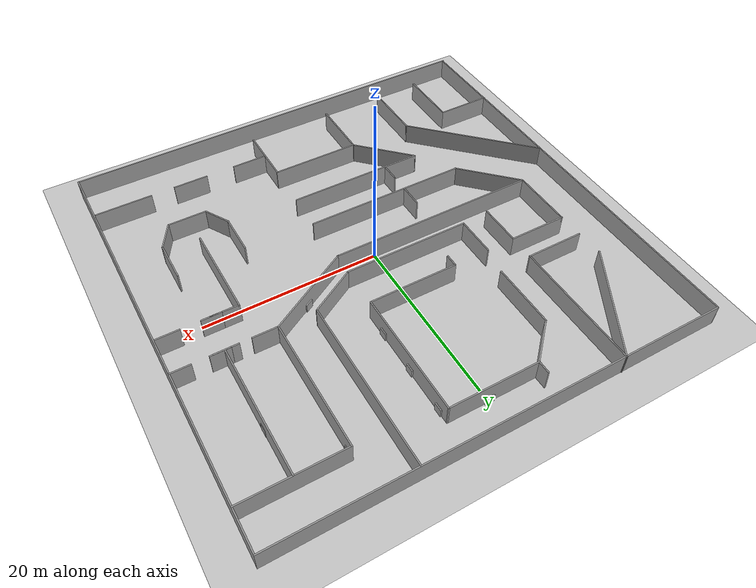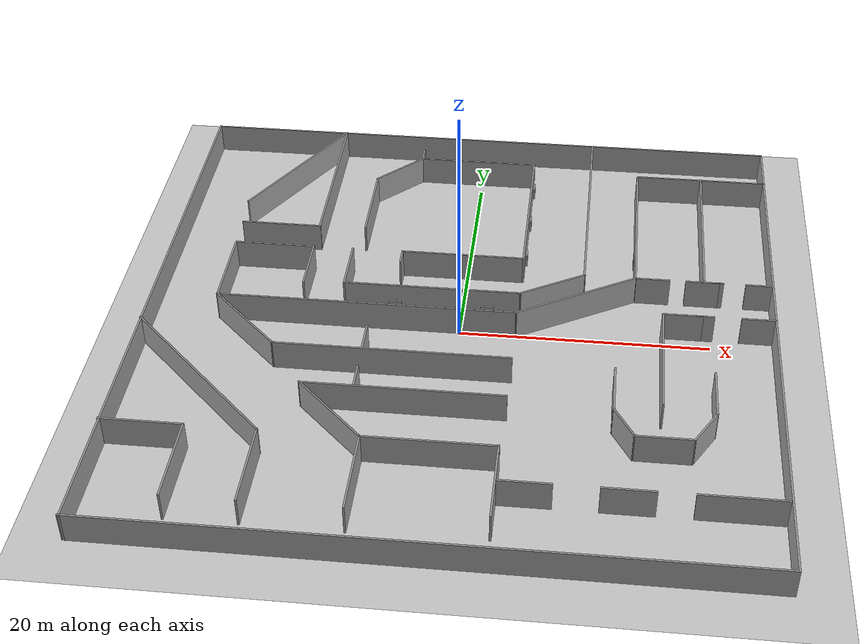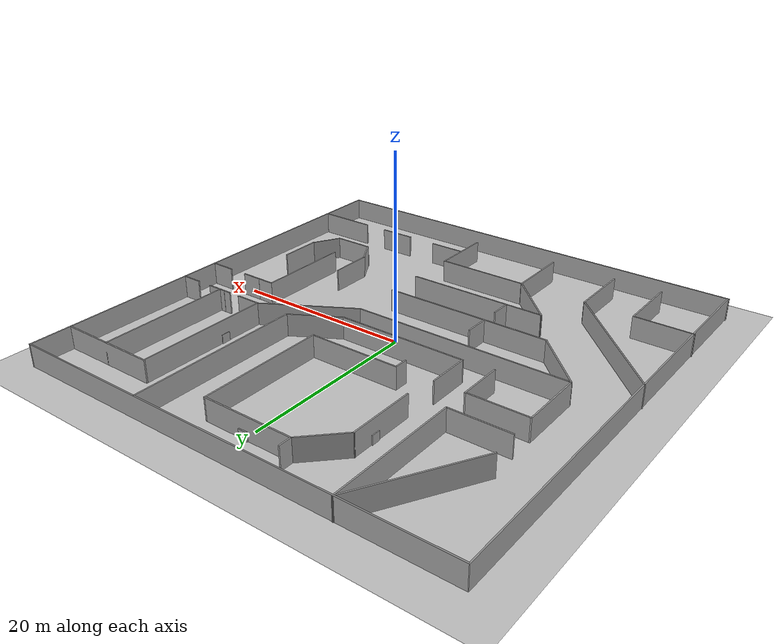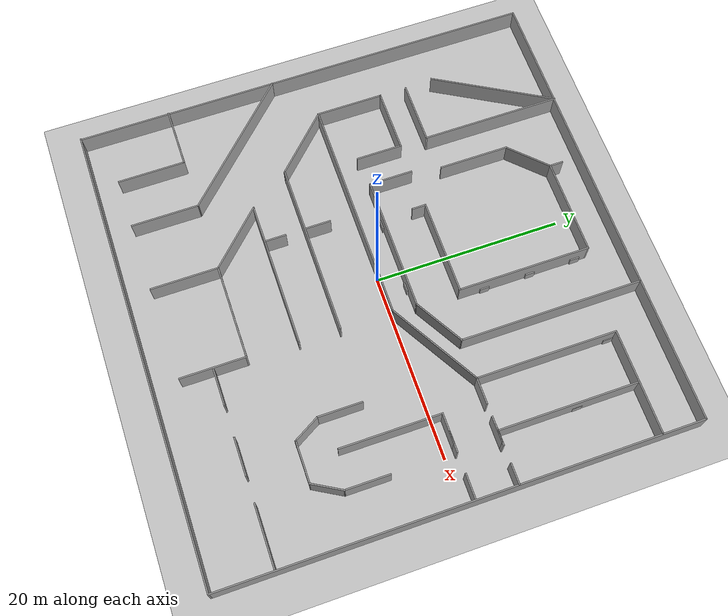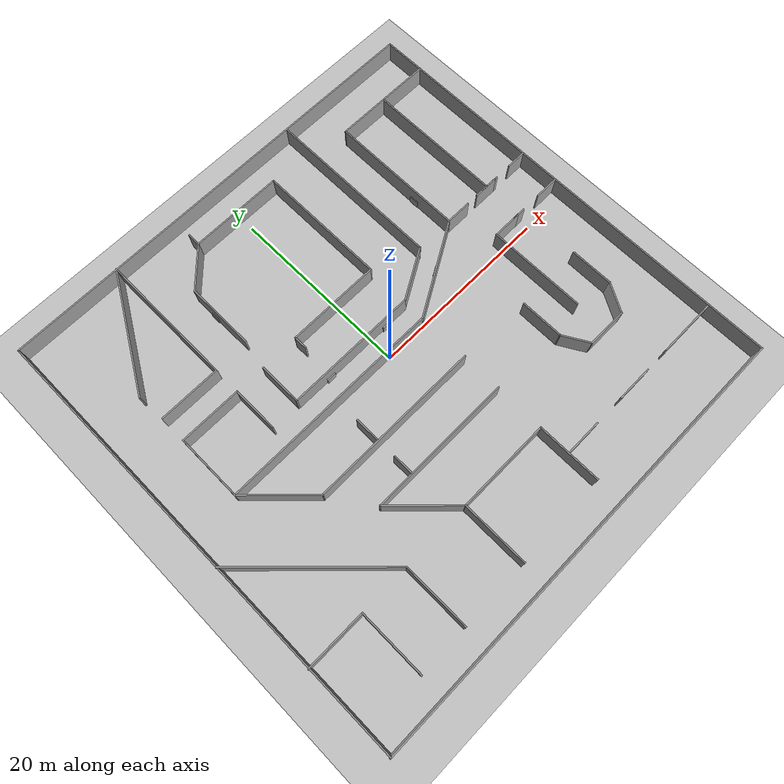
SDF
<?xml version="1.0" ?>

<sdf version="1.6">
	<world name="default">
		<!-- Uncomment this for tracking the robot -->
		<!-- Comment this for manually changing the camera-->
		<include>
			<uri>model://sun</uri>
		</include>
		<include>
			<uri>model://ground_plane</uri>
		</include>
        <include>
            <uri>model://house_3_3</uri>
            <pose>0 0 0 0 0 0</pose>
        </include>

        <include>
			<uri>model://house_3_help</uri>
			<pose>-7 -6.25 0 0 0 0</pose>
		</include>

        <include>
			<uri>model://house_3_help</uri>
			<pose>21.5 5.47 0 0 0 1.5708</pose>
		</include>

        <include>
			<uri>model://house_3_help</uri>
			<pose>17.5 5.47 0 0 0 1.5708</pose>
		</include>

        <include>
			<uri>model://house_3_help</uri>
			<pose>21.5 1.065 0 0 0 -1.5708</pose>
		</include>

        <include>
			<uri>model://willow_door_3</uri>
			<pose>13.84 10.24 0.5 0 0 1.5708</pose>
		</include>
        <include>
			<uri>model://willow_door_3</uri>
			<pose>-5.5 2.4 0.5 0 0 0</pose>
		</include>

        <include>
			<uri>model://willow_door_3</uri>
			<pose>2 2.4 0.5 0 0 0</pose>
		</include>

        <include>
			<uri>model://willow_door_3</uri>
			<pose>9.5 3.1 0.5 0 0 0.52</pose>
		</include>

        <include>
			<uri>model://willow_door_3</uri>
			<pose>0 21.46 0.5 0 0 0</pose>
		</include>

        <include>
			<uri>model://willow_door_3</uri>
			<pose>-9.2 15 0.5 0 0 1.5708</pose>
		</include>

        <include>
			<uri>model://willow_door_3</uri>
			<pose>4.75 10 0.5 0 0 1.5708</pose>
		</include>

        <include>
			<uri>model://willow_door_3</uri>
			<pose>4.75 20 0.5 0 0 1.5708</pose>
		</include>

        <include>
			<uri>model://willow_door_3</uri>
			<pose>4.75 15 0.5 0 0 1.5708</pose>
		</include>

        <include>
			<uri>model://house_3_help_2</uri>
			<pose>-5.5 22 0 0 0 -1.5708</pose>
		</include>

        <include>
			<uri>model://house_3_help_2</uri>
			<pose>-5.5 6.5 0 0 0 -1.5708</pose>
		</include>

        <include>
			<uri>model://willow_door_3</uri>
			<pose>14 19.7 0.5 0 0 1.5708</pose>
		</include>

        <include>
			<uri>model://willow_door_3</uri>
			<pose>19.5 14 0.5 0 0 1.5708</pose>
		</include>
	</world>
</sdf>

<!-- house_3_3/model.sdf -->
<sdf version='1.6'>
  <model name='house_3'>
    <pose frame=''>-12.8065 -13.7879 0 0 -0 0</pose>
    <link name='Wall_0'>
      <collision name='Wall_0_Collision'>
        <geometry>
          <box>
            <size>50 0.15 2.5</size>
          </box>
        </geometry>
        <pose frame=''>0 0 1.25 0 -0 0</pose>
      </collision>
      <visual name='Wall_0_Visual'>
        <pose frame=''>0 0 1.25 0 -0 0</pose>
        <geometry>
          <box>
            <size>50 0.15 2.5</size>
          </box>
        </geometry>
        <material>
          <script>
            <uri>file://media/materials/scripts/gazebo.material</uri>
            <name>Gazebo/Grey</name>
          </script>
          <ambient>1 1 1 1</ambient>
        </material>
        <meta>
          <layer>0</layer>
        </meta>
      </visual>
      <pose frame=''>0.082539 24.8829 0 0 -0 0</pose>
    </link>
    <link name='Wall_10'>
      <collision name='Wall_10_Collision'>
        <geometry>
          <box>
            <size>15 0.15 2.5</size>
          </box>
        </geometry>
        <pose frame=''>0 0 1.25 0 -0 0</pose>
      </collision>
      <visual name='Wall_10_Visual'>
        <pose frame=''>0 0 1.25 0 -0 0</pose>
        <geometry>
          <box>
            <size>15 0.15 2.5</size>
          </box>
        </geometry>
        <material>
          <script>
            <uri>file://media/materials/scripts/gazebo.material</uri>
            <name>Gazebo/Grey</name>
          </script>
          <ambient>1 1 1 1</ambient>
        </material>
        <meta>
          <layer>0</layer>
        </meta>
      </visual>
      <pose frame=''>13.9015 12.9025 0 0 -0 -1.5708</pose>
    </link>
    <link name='Wall_12'>
      <collision name='Wall_12_Collision'>
        <geometry>
          <box>
            <size>15 0.15 2.5</size>
          </box>
        </geometry>
        <pose frame=''>0 0 1.25 0 -0 0</pose>
      </collision>
      <visual name='Wall_12_Visual'>
        <pose frame=''>0 0 1.25 0 -0 0</pose>
        <geometry>
          <box>
            <size>15 0.15 2.5</size>
          </box>
        </geometry>
        <material>
          <script>
            <uri>file://media/materials/scripts/gazebo.material</uri>
            <name>Gazebo/Grey</name>
          </script>
          <ambient>1 1 1 1</ambient>
        </material>
        <meta>
          <layer>0</layer>
        </meta>
      </visual>
      <pose frame=''>19.4669 12.9025 0 0 -0 -1.5708</pose>
    </link>
    <link name='Wall_14'>
      <collision name='Wall_14_Collision'>
        <geometry>
          <box>
            <size>11 0.15 2.5</size>
          </box>
        </geometry>
        <pose frame=''>0 0 1.25 0 -0 0</pose>
      </collision>
      <visual name='Wall_14_Visual'>
        <pose frame=''>0 0 1.25 0 -0 0</pose>
        <geometry>
          <box>
            <size>11 0.15 2.5</size>
          </box>
        </geometry>
        <material>
          <script>
            <uri>file://media/materials/scripts/gazebo.material</uri>
            <name>Gazebo/Grey</name>
          </script>
          <ambient>1 1 1 1</ambient>
        </material>
        <meta>
          <layer>0</layer>
        </meta>
      </visual>
      <pose frame=''>9.2033 2.76496 0 0 -0 -2.61799</pose>
    </link>
    <link name='Wall_15'>
      <collision name='Wall_15_Collision'>
        <geometry>
          <box>
            <size>24.25 0.15 2.5</size>
          </box>
        </geometry>
        <pose frame=''>0 0 1.25 0 -0 0</pose>
      </collision>
      <visual name='Wall_15_Visual'>
        <pose frame=''>0 0 1.25 0 -0 0</pose>
        <geometry>
          <box>
            <size>24.25 0.15 2.5</size>
          </box>
        </geometry>
        <material>
          <script>
            <uri>file://media/materials/scripts/gazebo.material</uri>
            <name>Gazebo/Grey</name>
          </script>
          <ambient>1 1 1 1</ambient>
        </material>
        <meta>
          <layer>0</layer>
        </meta>
      </visual>
      <pose frame=''>-7.54488 0.052464 0 0 -0 3.14159</pose>
    </link>
    <link name='Wall_16'>
      <collision name='Wall_16_Collision'>
        <geometry>
          <box>
            <size>7.25 0.15 2.5</size>
          </box>
        </geometry>
        <pose frame=''>0 0 1.25 0 -0 0</pose>
      </collision>
      <visual name='Wall_16_Visual'>
        <pose frame=''>0 0 1.25 0 -0 0</pose>
        <geometry>
          <box>
            <size>7.25 0.15 2.5</size>
          </box>
        </geometry>
        <material>
          <script>
            <uri>file://media/materials/scripts/gazebo.material</uri>
            <name>Gazebo/Grey</name>
          </script>
          <ambient>1 1 1 1</ambient>
        </material>
        <meta>
          <layer>0</layer>
        </meta>
      </visual>
      <pose frame=''>-19.5949 3.60246 0 0 -0 1.5708</pose>
    </link>
    <link name='Wall_17'>
      <collision name='Wall_17_Collision'>
        <geometry>
          <box>
            <size>6.75 0.15 2.5</size>
          </box>
        </geometry>
        <pose frame=''>0 0 1.25 0 -0 0</pose>
      </collision>
      <visual name='Wall_17_Visual'>
        <pose frame=''>0 0 1.25 0 -0 0</pose>
        <geometry>
          <box>
            <size>6.75 0.15 2.5</size>
          </box>
        </geometry>
        <material>
          <script>
            <uri>file://media/materials/scripts/gazebo.material</uri>
            <name>Gazebo/Grey</name>
          </script>
          <ambient>1 1 1 1</ambient>
        </material>
        <meta>
          <layer>0</layer>
        </meta>
      </visual>
      <pose frame=''>-16.2949 7.15246 0 0 -0 0</pose>
    </link>
    <link name='Wall_18'>
      <collision name='Wall_18_Collision'>
        <geometry>
          <box>
            <size>5 0.15 2.5</size>
          </box>
        </geometry>
        <pose frame=''>0 0 1.25 0 -0 0</pose>
      </collision>
      <visual name='Wall_18_Visual'>
        <pose frame=''>0 0 1.25 0 -0 0</pose>
        <geometry>
          <box>
            <size>5 0.15 2.5</size>
          </box>
        </geometry>
        <material>
          <script>
            <uri>file://media/materials/scripts/gazebo.material</uri>
            <name>Gazebo/Grey</name>
          </script>
          <ambient>1 1 1 1</ambient>
        </material>
        <meta>
          <layer>0</layer>
        </meta>
      </visual>
      <pose frame=''>-12.9949 4.72746 0 0 -0 -1.5708</pose>
    </link>
    <link name='Wall_20'>
      <collision name='Wall_20_Collision'>
        <geometry>
          <box>
            <size>15 0.15 2.5</size>
          </box>
        </geometry>
        <pose frame=''>0 0 1.25 0 -0 0</pose>
      </collision>
      <visual name='Wall_20_Visual'>
        <pose frame=''>0 0 1.25 0 -0 0</pose>
        <geometry>
          <box>
            <size>15 0.15 2.5</size>
          </box>
        </geometry>
        <material>
          <script>
            <uri>file://media/materials/scripts/gazebo.material</uri>
            <name>Gazebo/Grey</name>
          </script>
          <ambient>1 1 1 1</ambient>
        </material>
        <meta>
          <layer>0</layer>
        </meta>
      </visual>
      <pose frame=''>-12.9922 17.5147 0 0 -0 -1.5708</pose>
    </link>
    <link name='Wall_21'>
      <collision name='Wall_21_Collision'>
        <geometry>
          <box>
            <size>6.75 0.15 2.5</size>
          </box>
        </geometry>
        <pose frame=''>0 0 1.25 0 -0 0</pose>
      </collision>
      <visual name='Wall_21_Visual'>
        <pose frame=''>0 0 1.25 0 -0 0</pose>
        <geometry>
          <box>
            <size>6.75 0.15 2.5</size>
          </box>
        </geometry>
        <material>
          <script>
            <uri>file://media/materials/scripts/gazebo.material</uri>
            <name>Gazebo/Grey</name>
          </script>
          <ambient>1 1 1 1</ambient>
        </material>
        <meta>
          <layer>0</layer>
        </meta>
      </visual>
      <pose frame=''>-16.2922 10.0897 0 0 -0 3.14159</pose>
    </link>
    <link name='Wall_23'>
      <collision name='Wall_23_Collision'>
        <geometry>
          <box>
            <size>13.75 0.15 2.5</size>
          </box>
        </geometry>
        <pose frame=''>0 0 1.25 0 -0 0</pose>
      </collision>
      <visual name='Wall_23_Visual'>
        <pose frame=''>0 0 1.25 0 -0 0</pose>
        <geometry>
          <box>
            <size>13.75 0.15 2.5</size>
          </box>
        </geometry>
        <material>
          <script>
            <uri>file://media/materials/scripts/gazebo.material</uri>
            <name>Gazebo/Grey</name>
          </script>
          <ambient>1 1 1 1</ambient>
        </material>
        <meta>
          <layer>0</layer>
        </meta>
      </visual>
      <pose frame=''>-16.3922 19.0507 0 0 -0 -2.0944</pose>
    </link>
    <link name='Wall_26'>
      <collision name='Wall_26_Collision'>
        <geometry>
          <box>
            <size>19.5 0.15 2.5</size>
          </box>
        </geometry>
        <pose frame=''>0 0 1.25 0 -0 0</pose>
      </collision>
      <visual name='Wall_26_Visual'>
        <pose frame=''>0 0 1.25 0 -0 0</pose>
        <geometry>
          <box>
            <size>19.5 0.15 2.5</size>
          </box>
        </geometry>
        <material>
          <script>
            <uri>file://media/materials/scripts/gazebo.material</uri>
            <name>Gazebo/Grey</name>
          </script>
          <ambient>1 1 1 1</ambient>
        </material>
        <meta>
          <layer>0</layer>
        </meta>
      </visual>
      <pose frame=''>9.7287 15.1594 0 0 -0 -1.5708</pose>
    </link>
    <link name='Wall_27'>
      <collision name='Wall_27_Collision'>
        <geometry>
          <box>
            <size>6 0.15 2.5</size>
          </box>
        </geometry>
        <pose frame=''>0 0 1.25 0 -0 0</pose>
      </collision>
      <visual name='Wall_27_Visual'>
        <pose frame=''>0 0 1.25 0 -0 0</pose>
        <geometry>
          <box>
            <size>6 0.15 2.5</size>
          </box>
        </geometry>
        <material>
          <script>
            <uri>file://media/materials/scripts/gazebo.material</uri>
            <name>Gazebo/Grey</name>
          </script>
          <ambient>1 1 1 1</ambient>
        </material>
        <meta>
          <layer>0</layer>
        </meta>
      </visual>
      <pose frame=''>7.19558 4.02185 0 0 -0 -2.61799</pose>
    </link>
    <link name='Wall_28'>
      <collision name='Wall_28_Collision'>
        <geometry>
          <box>
            <size>14.5 0.15 2.5</size>
          </box>
        </geometry>
        <pose frame=''>0 0 1.25 0 -0 0</pose>
      </collision>
      <visual name='Wall_28_Visual'>
        <pose frame=''>0 0 1.25 0 -0 0</pose>
        <geometry>
          <box>
            <size>14.5 0.15 2.5</size>
          </box>
        </geometry>
        <material>
          <script>
            <uri>file://media/materials/scripts/gazebo.material</uri>
            <name>Gazebo/Grey</name>
          </script>
          <ambient>1 1 1 1</ambient>
        </material>
        <meta>
          <layer>0</layer>
        </meta>
      </visual>
      <pose frame=''>-2.51255 2.55935 0 0 -0 3.14159</pose>
    </link>
    <link name='Wall_29'>
      <collision name='Wall_29_Collision'>
        <geometry>
          <box>
            <size>4.75 0.15 2.5</size>
          </box>
        </geometry>
        <pose frame=''>0 0 1.25 0 -0 0</pose>
      </collision>
      <visual name='Wall_29_Visual'>
        <pose frame=''>0 0 1.25 0 -0 0</pose>
        <geometry>
          <box>
            <size>4.75 0.15 2.5</size>
          </box>
        </geometry>
        <material>
          <script>
            <uri>file://media/materials/scripts/gazebo.material</uri>
            <name>Gazebo/Grey</name>
          </script>
          <ambient>1 1 1 1</ambient>
        </material>
        <meta>
          <layer>0</layer>
        </meta>
      </visual>
      <pose frame=''>-9.68755 4.85935 0 0 -0 1.5708</pose>
    </link>
    <link name='Wall_3'>
      <collision name='Wall_3_Collision'>
        <geometry>
          <box>
            <size>50 0.15 2.5</size>
          </box>
        </geometry>
        <pose frame=''>0 0 1.25 0 -0 0</pose>
      </collision>
      <visual name='Wall_3_Visual'>
        <pose frame=''>0 0 1.25 0 -0 0</pose>
        <geometry>
          <box>
            <size>50 0.15 2.5</size>
          </box>
        </geometry>
        <material>
          <script>
            <uri>file://media/materials/scripts/gazebo.material</uri>
            <name>Gazebo/Grey</name>
          </script>
          <ambient>1 1 1 1</ambient>
        </material>
        <meta>
          <layer>0</layer>
        </meta>
      </visual>
      <pose frame=''>25.0075 -0.042105 0 0 -0 -1.5708</pose>
    </link>
    <link name='Wall_32'>
      <collision name='Wall_32_Collision'>
        <geometry>
          <box>
            <size>16.75 0.15 2.5</size>
          </box>
        </geometry>
        <pose frame=''>0 0 1.25 0 -0 0</pose>
      </collision>
      <visual name='Wall_32_Visual'>
        <pose frame=''>0 0 1.25 0 -0 0</pose>
        <geometry>
          <box>
            <size>16.75 0.15 2.5</size>
          </box>
        </geometry>
        <material>
          <script>
            <uri>file://media/materials/scripts/gazebo.material</uri>
            <name>Gazebo/Grey</name>
          </script>
          <ambient>1 1 1 1</ambient>
        </material>
        <meta>
          <layer>0</layer>
        </meta>
      </visual>
      <pose frame=''>-19.0933 -9.36439 0 0 -0 -0.785398</pose>
    </link>
    <link name='Wall_33'>
      <collision name='Wall_33_Collision'>
        <geometry>
          <box>
            <size>7.25 0.15 2.5</size>
          </box>
        </geometry>
        <pose frame=''>0 0 1.25 0 -0 0</pose>
      </collision>
      <visual name='Wall_33_Visual'>
        <pose frame=''>0 0 1.25 0 -0 0</pose>
        <geometry>
          <box>
            <size>7.25 0.15 2.5</size>
          </box>
        </geometry>
        <material>
          <script>
            <uri>file://media/materials/scripts/gazebo.material</uri>
            <name>Gazebo/Grey</name>
          </script>
          <ambient>1 1 1 1</ambient>
        </material>
        <meta>
          <layer>0</layer>
        </meta>
      </visual>
      <pose frame=''>-13.2244 -18.7834 0 0 -0 -1.5708</pose>
    </link>
    <link name='Wall_35'>
      <collision name='Wall_35_Collision'>
        <geometry>
          <box>
            <size>8 0.15 2.5</size>
          </box>
        </geometry>
        <pose frame=''>0 0 1.25 0 -0 0</pose>
      </collision>
      <visual name='Wall_35_Visual'>
        <pose frame=''>0 0 1.25 0 -0 0</pose>
        <geometry>
          <box>
            <size>8 0.15 2.5</size>
          </box>
        </geometry>
        <material>
          <script>
            <uri>file://media/materials/scripts/gazebo.material</uri>
            <name>Gazebo/Grey</name>
          </script>
          <ambient>1 1 1 1</ambient>
        </material>
        <meta>
          <layer>0</layer>
        </meta>
      </visual>
      <pose frame=''>-16.8195 -2.72293 0 0 -0 -0.785398</pose>
    </link>
    <link name='Wall_36'>
      <collision name='Wall_36_Collision'>
        <geometry>
          <box>
            <size>18.75 0.15 2.5</size>
          </box>
        </geometry>
        <pose frame=''>0 0 1.25 0 -0 0</pose>
      </collision>
      <visual name='Wall_36_Visual'>
        <pose frame=''>0 0 1.25 0 -0 0</pose>
        <geometry>
          <box>
            <size>18.75 0.15 2.5</size>
          </box>
        </geometry>
        <material>
          <script>
            <uri>file://media/materials/scripts/gazebo.material</uri>
            <name>Gazebo/Grey</name>
          </script>
          <ambient>1 1 1 1</ambient>
        </material>
        <meta>
          <layer>0</layer>
        </meta>
      </visual>
      <pose frame=''>-4.7441 -5.49833 0 0 -0 0</pose>
    </link>
    <link name='Wall_38'>
      <collision name='Wall_38_Collision'>
        <geometry>
          <box>
            <size>15.75 0.15 2.5</size>
          </box>
        </geometry>
        <pose frame=''>0 0 1.25 0 -0 0</pose>
      </collision>
      <visual name='Wall_38_Visual'>
        <pose frame=''>0 0 1.25 0 -0 0</pose>
        <geometry>
          <box>
            <size>15.75 0.15 2.5</size>
          </box>
        </geometry>
        <material>
          <script>
            <uri>file://media/materials/scripts/gazebo.material</uri>
            <name>Gazebo/Grey</name>
          </script>
          <ambient>1 1 1 1</ambient>
        </material>
        <meta>
          <layer>0</layer>
        </meta>
      </visual>
      <pose frame=''>-3.28574 -9.83847 0 0 -0 3.14159</pose>
    </link>
    <link name='Wall_39'>
      <collision name='Wall_39_Collision'>
        <geometry>
          <box>
            <size>7.75 0.15 2.5</size>
          </box>
        </geometry>
        <pose frame=''>0 0 1.25 0 -0 0</pose>
      </collision>
      <visual name='Wall_39_Visual'>
        <pose frame=''>0 0 1.25 0 -0 0</pose>
        <geometry>
          <box>
            <size>7.75 0.15 2.5</size>
          </box>
        </geometry>
        <material>
          <script>
            <uri>file://media/materials/scripts/gazebo.material</uri>
            <name>Gazebo/Grey</name>
          </script>
          <ambient>1 1 1 1</ambient>
        </material>
        <meta>
          <layer>0</layer>
        </meta>
      </visual>
      <pose frame=''>-8.3986 -12.5253 0 0 -0 -0.785339</pose>
    </link>
    <link name='Wall_4'>
      <collision name='Wall_4_Collision'>
        <geometry>
          <box>
            <size>50.16 0.15 2.5</size>
          </box>
        </geometry>
        <pose frame=''>0 0 1.25 0 -0 0</pose>
      </collision>
      <visual name='Wall_4_Visual'>
        <pose frame=''>0 0 1.25 0 -0 0</pose>
        <geometry>
          <box>
            <size>50.16 0.15 2.5</size>
          </box>
        </geometry>
        <material>
          <script>
            <uri>file://media/materials/scripts/gazebo.material</uri>
            <name>Gazebo/Grey</name>
          </script>
          <ambient>1 1 1 1</ambient>
        </material>
        <meta>
          <layer>0</layer>
        </meta>
      </visual>
      <pose frame=''>0.002539 -24.9671 0 0 -0 3.14159</pose>
    </link>
    <link name='Wall_40'>
      <collision name='Wall_40_Collision'>
        <geometry>
          <box>
            <size>10.25 0.15 2.5</size>
          </box>
        </geometry>
        <pose frame=''>0 0 1.25 0 -0 0</pose>
      </collision>
      <visual name='Wall_40_Visual'>
        <pose frame=''>0 0 1.25 0 -0 0</pose>
        <geometry>
          <box>
            <size>10.25 0.15 2.5</size>
          </box>
        </geometry>
        <material>
          <script>
            <uri>file://media/materials/scripts/gazebo.material</uri>
            <name>Gazebo/Grey</name>
          </script>
          <ambient>1 1 1 1</ambient>
        </material>
        <meta>
          <layer>0</layer>
        </meta>
      </visual>
      <pose frame=''>-0.661594 -15.2123 0 0 -0 -3.7e-05</pose>
    </link>
    <link name='Wall_41'>
      <collision name='Wall_41_Collision'>
        <geometry>
          <box>
            <size>7 0.15 2.5</size>
          </box>
        </geometry>
        <pose frame=''>0 0 1.25 0 -0 0</pose>
      </collision>
      <visual name='Wall_41_Visual'>
        <pose frame=''>0 0 1.25 0 -0 0</pose>
        <geometry>
          <box>
            <size>7 0.15 2.5</size>
          </box>
        </geometry>
        <material>
          <script>
            <uri>file://media/materials/scripts/gazebo.material</uri>
            <name>Gazebo/Grey</name>
          </script>
          <ambient>1 1 1 1</ambient>
        </material>
        <meta>
          <layer>0</layer>
        </meta>
      </visual>
      <pose frame=''>4.38827 -18.6375 0 0 -0 -1.5708</pose>
    </link>
    <link name='Wall_45'>
      <collision name='Wall_45_Collision'>
        <geometry>
          <box>
            <size>4.75 0.15 2.5</size>
          </box>
        </geometry>
        <pose frame=''>0 0 1.25 0 -0 0</pose>
      </collision>
      <visual name='Wall_45_Visual'>
        <pose frame=''>0 0 1.25 0 -0 0</pose>
        <geometry>
          <box>
            <size>4.75 0.15 2.5</size>
          </box>
        </geometry>
        <material>
          <script>
            <uri>file://media/materials/scripts/gazebo.material</uri>
            <name>Gazebo/Grey</name>
          </script>
          <ambient>1 1 1 1</ambient>
        </material>
        <meta>
          <layer>0</layer>
        </meta>
      </visual>
      <pose frame=''>20.0784 -7.97043 0 0 -0 -1.5708</pose>
    </link>
    <link name='Wall_46'>
      <collision name='Wall_46_Collision'>
        <geometry>
          <box>
            <size>3.5 0.15 2.5</size>
          </box>
        </geometry>
        <pose frame=''>0 0 1.25 0 -0 0</pose>
      </collision>
      <visual name='Wall_46_Visual'>
        <pose frame=''>0 0 1.25 0 -0 0</pose>
        <geometry>
          <box>
            <size>3.5 0.15 2.5</size>
          </box>
        </geometry>
        <material>
          <script>
            <uri>file://media/materials/scripts/gazebo.material</uri>
            <name>Gazebo/Grey</name>
          </script>
          <ambient>1 1 1 1</ambient>
        </material>
        <meta>
          <layer>0</layer>
        </meta>
      </visual>
      <pose frame=''>19.2409 -11.721 0 0 -0 -2.0944</pose>
    </link>
    <link name='Wall_47'>
      <collision name='Wall_47_Collision'>
        <geometry>
          <box>
            <size>4.5 0.15 2.5</size>
          </box>
        </geometry>
        <pose frame=''>0 0 1.25 0 -0 0</pose>
      </collision>
      <visual name='Wall_47_Visual'>
        <pose frame=''>0 0 1.25 0 -0 0</pose>
        <geometry>
          <box>
            <size>4.5 0.15 2.5</size>
          </box>
        </geometry>
        <material>
          <script>
            <uri>file://media/materials/scripts/gazebo.material</uri>
            <name>Gazebo/Grey</name>
          </script>
          <ambient>1 1 1 1</ambient>
        </material>
        <meta>
          <layer>0</layer>
        </meta>
      </visual>
      <pose frame=''>16.2284 -13.1716 0 0 -0 3.14159</pose>
    </link>
    <link name='Wall_48'>
      <collision name='Wall_48_Collision'>
        <geometry>
          <box>
            <size>3.25 0.15 2.5</size>
          </box>
        </geometry>
        <pose frame=''>0 0 1.25 0 -0 0</pose>
      </collision>
      <visual name='Wall_48_Visual'>
        <pose frame=''>0 0 1.25 0 -0 0</pose>
        <geometry>
          <box>
            <size>3.25 0.15 2.5</size>
          </box>
        </geometry>
        <material>
          <script>
            <uri>file://media/materials/scripts/gazebo.material</uri>
            <name>Gazebo/Grey</name>
          </script>
          <ambient>1 1 1 1</ambient>
        </material>
        <meta>
          <layer>0</layer>
        </meta>
      </visual>
      <pose frame=''>13.2784 -11.8293 0 0 -0 2.0944</pose>
    </link>
    <link name='Wall_49'>
      <collision name='Wall_49_Collision'>
        <geometry>
          <box>
            <size>4.75 0.15 2.5</size>
          </box>
        </geometry>
        <pose frame=''>0 0 1.25 0 -0 0</pose>
      </collision>
      <visual name='Wall_49_Visual'>
        <pose frame=''>0 0 1.25 0 -0 0</pose>
        <geometry>
          <box>
            <size>4.75 0.15 2.5</size>
          </box>
        </geometry>
        <material>
          <script>
            <uri>file://media/materials/scripts/gazebo.material</uri>
            <name>Gazebo/Grey</name>
          </script>
          <ambient>1 1 1 1</ambient>
        </material>
        <meta>
          <layer>0</layer>
        </meta>
      </visual>
      <pose frame=''>12.5034 -8.18694 0 0 -0 1.5708</pose>
    </link>
    <link name='Wall_52'>
      <collision name='Wall_52_Collision'>
        <geometry>
          <box>
            <size>10.25 0.15 2.5</size>
          </box>
        </geometry>
        <pose frame=''>0 0 1.25 0 -0 0</pose>
      </collision>
      <visual name='Wall_52_Visual'>
        <pose frame=''>0 0 1.25 0 -0 0</pose>
        <geometry>
          <box>
            <size>10.25 0.15 2.5</size>
          </box>
        </geometry>
        <material>
          <script>
            <uri>file://media/materials/scripts/gazebo.material</uri>
            <name>Gazebo/Grey</name>
          </script>
          <ambient>1 1 1 1</ambient>
        </material>
        <meta>
          <layer>0</layer>
        </meta>
      </visual>
      <pose frame=''>-0.439669 7.22302 0 0 -0 0</pose>
    </link>
    <link name='Wall_53'>
      <collision name='Wall_53_Collision'>
        <geometry>
          <box>
            <size>14.25 0.15 2.5</size>
          </box>
        </geometry>
        <pose frame=''>0 0 1.25 0 -0 0</pose>
      </collision>
      <visual name='Wall_53_Visual'>
        <pose frame=''>0 0 1.25 0 -0 0</pose>
        <geometry>
          <box>
            <size>14.25 0.15 2.5</size>
          </box>
        </geometry>
        <material>
          <script>
            <uri>file://media/materials/scripts/gazebo.material</uri>
            <name>Gazebo/Grey</name>
          </script>
          <ambient>1 1 1 1</ambient>
        </material>
        <meta>
          <layer>0</layer>
        </meta>
      </visual>
      <pose frame=''>4.61033 14.273 0 0 -0 1.5708</pose>
    </link>
    <link name='Wall_54'>
      <collision name='Wall_54_Collision'>
        <geometry>
          <box>
            <size>10.25 0.15 2.5</size>
          </box>
        </geometry>
        <pose frame=''>0 0 1.25 0 -0 0</pose>
      </collision>
      <visual name='Wall_54_Visual'>
        <pose frame=''>0 0 1.25 0 -0 0</pose>
        <geometry>
          <box>
            <size>10.25 0.15 2.5</size>
          </box>
        </geometry>
        <material>
          <script>
            <uri>file://media/materials/scripts/gazebo.material</uri>
            <name>Gazebo/Grey</name>
          </script>
          <ambient>1 1 1 1</ambient>
        </material>
        <meta>
          <layer>0</layer>
        </meta>
      </visual>
      <pose frame=''>-0.439669 21.323 0 0 -0 3.14159</pose>
    </link>
    <link name='Wall_55'>
      <collision name='Wall_55_Collision'>
        <geometry>
          <box>
            <size>5.25 0.15 2.5</size>
          </box>
        </geometry>
        <pose frame=''>0 0 1.25 0 -0 0</pose>
      </collision>
      <visual name='Wall_55_Visual'>
        <pose frame=''>0 0 1.25 0 -0 0</pose>
        <geometry>
          <box>
            <size>5.25 0.15 2.5</size>
          </box>
        </geometry>
        <material>
          <script>
            <uri>file://media/materials/scripts/gazebo.material</uri>
            <name>Gazebo/Grey</name>
          </script>
          <ambient>1 1 1 1</ambient>
        </material>
        <meta>
          <layer>0</layer>
        </meta>
      </visual>
      <pose frame=''>-7.29279 19.5199 0 0 -0 -2.35619</pose>
    </link>
    <link name='Wall_56'>
      <collision name='Wall_56_Collision'>
        <geometry>
          <box>
            <size>7.5 0.15 2.5</size>
          </box>
        </geometry>
        <pose frame=''>0 0 1.25 0 -0 0</pose>
      </collision>
      <visual name='Wall_56_Visual'>
        <pose frame=''>0 0 1.25 0 -0 0</pose>
        <geometry>
          <box>
            <size>7.5 0.15 2.5</size>
          </box>
        </geometry>
        <material>
          <script>
            <uri>file://media/materials/scripts/gazebo.material</uri>
            <name>Gazebo/Grey</name>
          </script>
          <ambient>1 1 1 1</ambient>
        </material>
        <meta>
          <layer>0</layer>
        </meta>
      </visual>
      <pose frame=''>-9.09591 14.0418 0 0 -0 -1.5708</pose>
    </link>
    <link name='Wall_58'>
      <collision name='Wall_58_Collision'>
        <geometry>
          <box>
            <size>10.75 0.15 2.5</size>
          </box>
        </geometry>
        <pose frame=''>0 0 1.25 0 -0 0</pose>
      </collision>
      <visual name='Wall_58_Visual'>
        <pose frame=''>0 0 1.25 0 -0 0</pose>
        <geometry>
          <box>
            <size>10.75 0.15 2.5</size>
          </box>
        </geometry>
        <material>
          <script>
            <uri>file://media/materials/scripts/gazebo.material</uri>
            <name>Gazebo/Grey</name>
          </script>
          <ambient>1 1 1 1</ambient>
        </material>
        <meta>
          <layer>0</layer>
        </meta>
      </visual>
      <pose frame=''>16.1325 -4.24559 0 0 -0 1.5708</pose>
    </link>
    <link name='Wall_59'>
      <collision name='Wall_59_Collision'>
        <geometry>
          <box>
            <size>3.25 0.15 2.5</size>
          </box>
        </geometry>
        <pose frame=''>0 0 1.25 0 -0 0</pose>
      </collision>
      <visual name='Wall_59_Visual'>
        <pose frame=''>0 0 1.25 0 -0 0</pose>
        <geometry>
          <box>
            <size>3.25 0.15 2.5</size>
          </box>
        </geometry>
        <material>
          <script>
            <uri>file://media/materials/scripts/gazebo.material</uri>
            <name>Gazebo/Grey</name>
          </script>
          <ambient>1 1 1 1</ambient>
        </material>
        <meta>
          <layer>0</layer>
        </meta>
      </visual>
      <pose frame=''>17.6825 1.05441 0 0 -0 0</pose>
    </link>
    <link name='Wall_61'>
      <collision name='Wall_61_Collision'>
        <geometry>
          <box>
            <size>4 0.15 2.5</size>
          </box>
        </geometry>
        <pose frame=''>0 0 1.25 0 -0 0</pose>
      </collision>
      <visual name='Wall_61_Visual'>
        <pose frame=''>0 0 1.25 0 -0 0</pose>
        <geometry>
          <box>
            <size>4 0.15 2.5</size>
          </box>
        </geometry>
        <material>
          <script>
            <uri>file://media/materials/scripts/gazebo.material</uri>
            <name>Gazebo/Grey</name>
          </script>
          <ambient>1 1 1 1</ambient>
        </material>
        <meta>
          <layer>0</layer>
        </meta>
      </visual>
      <pose frame=''>6.44831 -18.6339 0 0 -0 0</pose>
    </link>
    <link name='Wall_63'>
      <collision name='Wall_63_Collision'>
        <geometry>
          <box>
            <size>4 0.15 2.5</size>
          </box>
        </geometry>
        <pose frame=''>0 0 1.25 0 -0 0</pose>
      </collision>
      <visual name='Wall_63_Visual'>
        <pose frame=''>0 0 1.25 0 -0 0</pose>
        <geometry>
          <box>
            <size>4 0.15 2.5</size>
          </box>
        </geometry>
        <material>
          <script>
            <uri>file://media/materials/scripts/gazebo.material</uri>
            <name>Gazebo/Grey</name>
          </script>
          <ambient>1 1 1 1</ambient>
        </material>
        <meta>
          <layer>0</layer>
        </meta>
      </visual>
      <pose frame=''>13.754 -18.6339 0 0 -0 0</pose>
    </link>
    <link name='Wall_68'>
      <collision name='Wall_68_Collision'>
        <geometry>
          <box>
            <size>6.5 0.15 2.5</size>
          </box>
        </geometry>
        <pose frame=''>0 0 1.25 0 -0 0</pose>
      </collision>
      <visual name='Wall_68_Visual'>
        <pose frame=''>0 0 1.25 0 -0 0</pose>
        <geometry>
          <box>
            <size>6.5 0.15 2.5</size>
          </box>
        </geometry>
        <material>
          <script>
            <uri>file://media/materials/scripts/gazebo.material</uri>
            <name>Gazebo/Grey</name>
          </script>
          <ambient>1 1 1 1</ambient>
        </material>
        <meta>
          <layer>0</layer>
        </meta>
      </visual>
      <pose frame=''>-21.8325 -15.2562 0 0 -0 4.3e-05</pose>
    </link>
    <link name='Wall_69'>
      <collision name='Wall_69_Collision'>
        <geometry>
          <box>
            <size>7.25 0.15 2.5</size>
          </box>
        </geometry>
        <pose frame=''>0 0 1.25 0 -0 0</pose>
      </collision>
      <visual name='Wall_69_Visual'>
        <pose frame=''>0 0 1.25 0 -0 0</pose>
        <geometry>
          <box>
            <size>7.25 0.15 2.5</size>
          </box>
        </geometry>
        <material>
          <script>
            <uri>file://media/materials/scripts/gazebo.material</uri>
            <name>Gazebo/Grey</name>
          </script>
          <ambient>1 1 1 1</ambient>
        </material>
        <meta>
          <layer>0</layer>
        </meta>
      </visual>
      <pose frame=''>-18.6575 -18.8061 0 0 -0 -1.5708</pose>
    </link>
    <link name='Wall_7'>
      <collision name='Wall_7_Collision'>
        <geometry>
          <box>
            <size>50 0.15 2.5</size>
          </box>
        </geometry>
        <pose frame=''>0 0 1.25 0 -0 0</pose>
      </collision>
      <visual name='Wall_7_Visual'>
        <pose frame=''>0 0 1.25 0 -0 0</pose>
        <geometry>
          <box>
            <size>50 0.15 2.5</size>
          </box>
        </geometry>
        <material>
          <script>
            <uri>file://media/materials/scripts/gazebo.material</uri>
            <name>Gazebo/Grey</name>
          </script>
          <ambient>1 1 1 1</ambient>
        </material>
        <meta>
          <layer>0</layer>
        </meta>
      </visual>
      <pose frame=''>-24.9225 -0.042105 0 0 -0 1.5708</pose>
    </link>
    <link name='Wall_72'>
      <collision name='Wall_72_Collision'>
        <geometry>
          <box>
            <size>6.5 0.15 2.5</size>
          </box>
        </geometry>
        <pose frame=''>0 0 1.25 0 -0 0</pose>
      </collision>
      <visual name='Wall_72_Visual'>
        <pose frame=''>0 0 1.25 0 -0 0</pose>
        <geometry>
          <box>
            <size>6.5 0.15 2.5</size>
          </box>
        </geometry>
        <material>
          <script>
            <uri>file://media/materials/scripts/gazebo.material</uri>
            <name>Gazebo/Grey</name>
          </script>
          <ambient>1 1 1 1</ambient>
        </material>
        <meta>
          <layer>0</layer>
        </meta>
      </visual>
      <pose frame=''>21.6582 -18.6237 0 0 -0 0</pose>
    </link>
    <link name='Wall_74'>
      <collision name='Wall_74_Collision'>
        <geometry>
          <box>
            <size>7.25 0.15 2.5</size>
          </box>
        </geometry>
        <pose frame=''>0 0 1.25 0 -0 0</pose>
      </collision>
      <visual name='Wall_74_Visual'>
        <pose frame=''>0 0 1.25 0 -0 0</pose>
        <geometry>
          <box>
            <size>7.25 0.15 2.5</size>
          </box>
        </geometry>
        <material>
          <script>
            <uri>file://media/materials/scripts/gazebo.material</uri>
            <name>Gazebo/Grey</name>
          </script>
          <ambient>1 1 1 1</ambient>
        </material>
        <meta>
          <layer>0</layer>
        </meta>
      </visual>
      <pose frame=''>-5.71146 -18.7621 0 0 -0 -1.5708</pose>
    </link>
    <link name='Wall_9'>
      <collision name='Wall_9_Collision'>
        <geometry>
          <box>
            <size>11.25 0.15 2.5</size>
          </box>
        </geometry>
        <pose frame=''>0 0 1.25 0 -0 0</pose>
      </collision>
      <visual name='Wall_9_Visual'>
        <pose frame=''>0 0 1.25 0 -0 0</pose>
        <geometry>
          <box>
            <size>11.25 0.15 2.5</size>
          </box>
        </geometry>
        <material>
          <script>
            <uri>file://media/materials/scripts/gazebo.material</uri>
            <name>Gazebo/Grey</name>
          </script>
          <ambient>1 1 1 1</ambient>
        </material>
        <meta>
          <layer>0</layer>
        </meta>
      </visual>
      <pose frame=''>19.4515 20.3275 0 0 -0 3.14159</pose>
    </link>
    <static>1</static>
  </model>
</sdf>

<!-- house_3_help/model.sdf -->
<sdf version='1.6'>
  <model name='house_3_help'>
    <pose frame=''>-5.995 -6.24 0 0 -0 0</pose>
    <link name='Wall_0'>
      <collision name='Wall_0_Collision'>
        <geometry>
          <box>
            <size>2.75 0.15 2.5</size>
          </box>
        </geometry>
        <pose frame=''>0 0 1.25 0 -0 0</pose>
      </collision>
      <visual name='Wall_0_Visual'>
        <pose frame=''>0 0 1.25 0 -0 0</pose>
        <geometry>
          <box>
            <size>2.75 0.15 2.5</size>
          </box>
        </geometry>
        <material>
          <script>
            <uri>file://media/materials/scripts/gazebo.material</uri>
            <name>Gazebo/Grey</name>
          </script>
          <ambient>1 1 1 1</ambient>
        </material>
        <meta>
          <layer>0</layer>
        </meta>
      </visual>
      <pose frame=''>-0.005 2.17 0 0 -0 1.5708</pose>
    </link>
    <link name='Wall_7'>
      <collision name='Wall_7_Collision'>
        <geometry>
          <box>
            <size>2.25 0.15 2.5</size>
          </box>
        </geometry>
        <pose frame=''>0 0 1.25 0 -0 0</pose>
      </collision>
      <visual name='Wall_7_Visual'>
        <pose frame=''>0 0 1.25 0 -0 0</pose>
        <geometry>
          <box>
            <size>2.25 0.15 2.5</size>
          </box>
        </geometry>
        <material>
          <script>
            <uri>file://media/materials/scripts/gazebo.material</uri>
            <name>Gazebo/Grey</name>
          </script>
          <ambient>1 1 1 1</ambient>
        </material>
        <meta>
          <layer>0</layer>
        </meta>
      </visual>
      <pose frame=''>0.005 -2.42 0 0 -0 -1.5708</pose>
    </link>
    <static>1</static>
  </model>
</sdf>

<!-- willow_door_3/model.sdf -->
<sdf version='1.6'>
  <model name='willow_door_3'>
    <link name='link_0'>
      <inertial>
        <mass>1.55289</mass>
        <inertia>
          <ixx>0.132528</ixx>
          <ixy>0</ixy>
          <ixz>0</ixz>
          <iyy>0.258815</iyy>
          <iyz>0</iyz>
          <izz>0.132528</izz>
        </inertia>
        <pose frame=''>0 0 0 0 -0 0</pose>
      </inertial>
      <pose frame=''>0 0 0 0 -0 0</pose>
      <gravity>1</gravity>
      <self_collide>0</self_collide>
      <kinematic>0</kinematic>
      <enable_wind>0</enable_wind>
      <visual name='visual'>
        <pose frame=''>0 0 0 0 -0 0</pose>
        <geometry>
          <box>
            <size>1 0.15529 1</size>
          </box>
        </geometry>
        <material>
          <lighting>1</lighting>
          <script>
            <uri>file://media/materials/scripts/gazebo.material</uri>
            <name>Gazebo/Grey</name>
          </script>
          <shader type='vertex'>
            <normal_map>__default__</normal_map>
          </shader>
          <ambient>0.3 0.3 0.3 1</ambient>
          <diffuse>0.7 0.7 0.7 1</diffuse>
          <specular>0.01 0.01 0.01 1</specular>
          <emissive>0 0 0 1</emissive>
        </material>
        <transparency>0</transparency>
        <cast_shadows>1</cast_shadows>
      </visual>
      <collision name='collision'>
        <laser_retro>0</laser_retro>
        <max_contacts>10</max_contacts>
        <pose frame=''>0 0 0 0 -0 0</pose>
        <geometry>
          <box>
            <size>1 0.15529 1</size>
          </box>
        </geometry>
        <surface>
          <friction>
            <ode>
              <mu>1</mu>
              <mu2>1</mu2>
              <fdir1>0 0 0</fdir1>
              <slip1>0</slip1>
              <slip2>0</slip2>
            </ode>
            <torsional>
              <coefficient>1</coefficient>
              <patch_radius>0</patch_radius>
              <surface_radius>0</surface_radius>
              <use_patch_radius>1</use_patch_radius>
              <ode>
                <slip>0</slip>
              </ode>
            </torsional>
          </friction>
          <bounce>
            <restitution_coefficient>0</restitution_coefficient>
            <threshold>1e+06</threshold>
          </bounce>
          <contact>
            <collide_without_contact>0</collide_without_contact>
            <collide_without_contact_bitmask>1</collide_without_contact_bitmask>
            <collide_bitmask>1</collide_bitmask>
            <ode>
              <soft_cfm>0</soft_cfm>
              <soft_erp>0.2</soft_erp>
              <kp>1e+13</kp>
              <kd>1</kd>
              <max_vel>0.01</max_vel>
              <min_depth>0</min_depth>
            </ode>
            <bullet>
              <split_impulse>1</split_impulse>
              <split_impulse_penetration_threshold>-0.01</split_impulse_penetration_threshold>
              <soft_cfm>0</soft_cfm>
              <soft_erp>0.2</soft_erp>
              <kp>1e+13</kp>
              <kd>1</kd>
            </bullet>
          </contact>
        </surface>
      </collision>
    </link>
    <static>0</static>
    <allow_auto_disable>1</allow_auto_disable>
  </model>
</sdf>

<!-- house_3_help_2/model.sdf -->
<sdf version='1.6'>
  <model name='house_3_help_2'>
    <pose frame=''>-6.40713 5.46054 0 0 -0 0</pose>
    <link name='Wall_0'>
      <collision name='Wall_0_Collision'>
        <geometry>
          <box>
            <size>1.5 0.15 2.5</size>
          </box>
        </geometry>
        <pose frame=''>0 0 1.25 0 -0 0</pose>
      </collision>
      <visual name='Wall_0_Visual'>
        <pose frame=''>0 0 1.25 0 -0 0</pose>
        <geometry>
          <box>
            <size>1.5 0.15 2.5</size>
          </box>
        </geometry>
        <material>
          <script>
            <uri>file://media/materials/scripts/gazebo.material</uri>
            <name>Gazebo/Grey</name>
          </script>
          <ambient>1 1 1 1</ambient>
        </material>
        <meta>
          <layer>0</layer>
        </meta>
      </visual>
      <pose frame=''>0 0 0 0 -0 3.14159</pose>
    </link>
    <static>1</static>
  </model>
</sdf>
